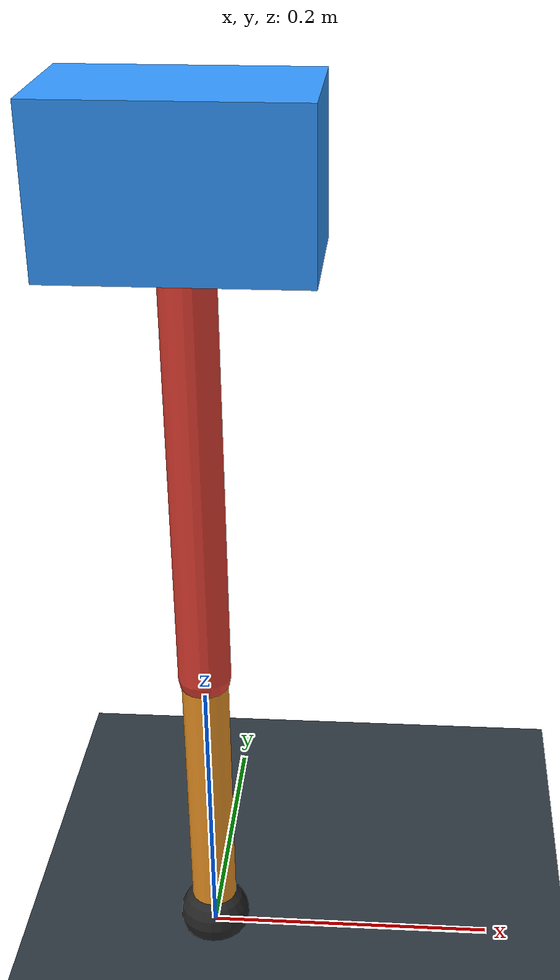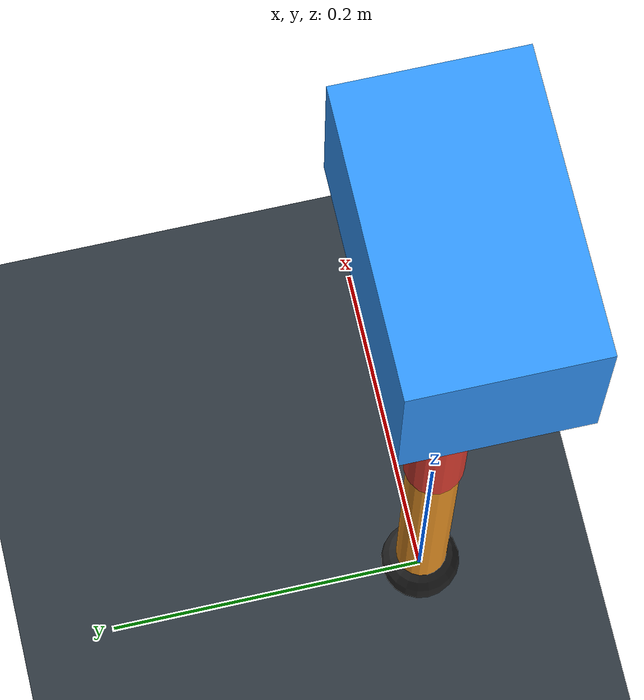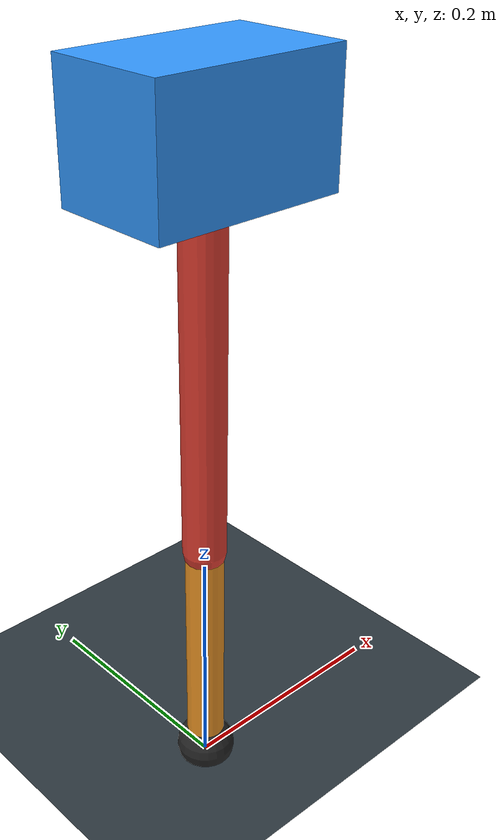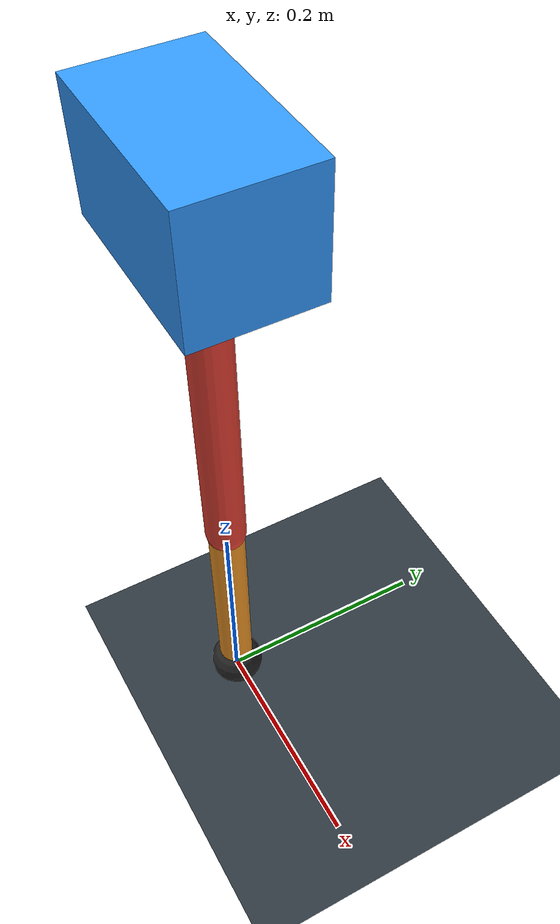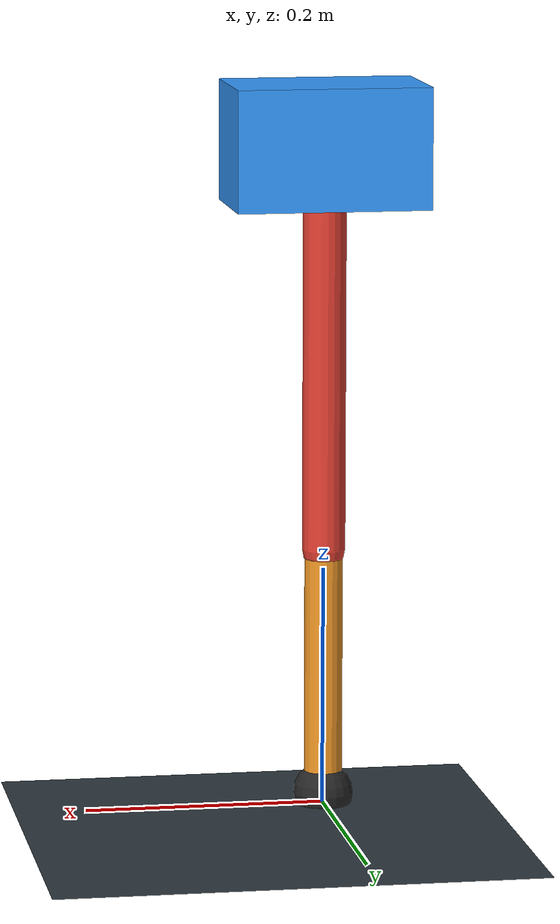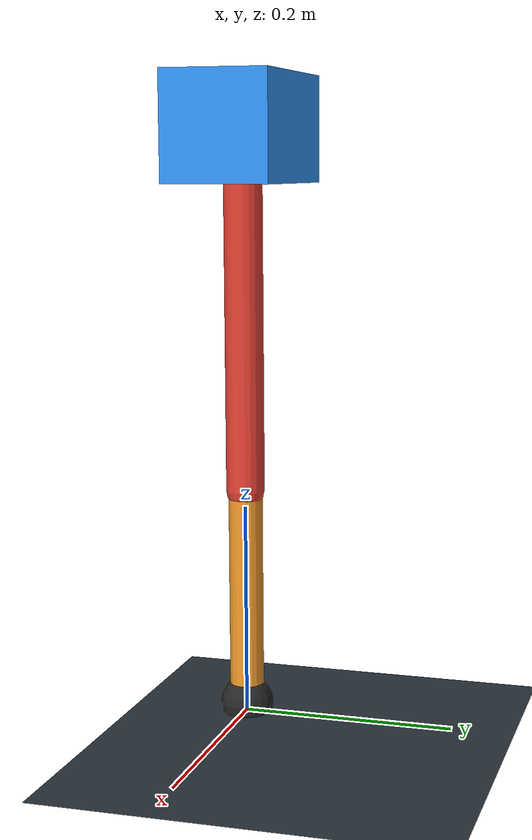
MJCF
<mujoco model="single_axis_two_bar">
  <compiler angle="radian" inertiafromgeom="true"/>
  <option timestep="0.001" integrator="implicitfast" gravity="0 0 -9.81"/>
  <default>
    <joint damping="0.08"/>
    <geom friction="1.2 0.01 0.0001" condim="3"/>
  </default>
  <worldbody>
    <geom name="floor" type="plane" size="5 5 0.1" rgba="0.18 0.22 0.25 1"/>
    <body name="carriage" pos="0 0 0.5541754766286212">
      <joint name="pole_slide" type="slide" axis="0 0 1"/>
      <geom name="payload" type="box" size="0.08 0.05 0.05" mass="3.296033161922973" rgba="0.2 0.6 1 1"/>
      <body name="thigh" pos="0 0 0">
        <joint name="hip" type="hinge" axis="0 1 0"/>
        <geom name="thigh_link" type="capsule" fromto="0 0 0 0 0 -0.337912864077178" size="0.018" mass="0.2407673807795375" rgba="0.9 0.25 0.2 1"/>
        <body name="shank" pos="0 0 -0.337912864077178">
          <joint name="knee" type="hinge" axis="0 1 0"/>
          <geom name="shank_link" type="capsule" fromto="0 0 0 0 0 -0.20762886440593661" size="0.016" mass="0.14793830946261197" rgba="0.95 0.6 0.15 1"/>
          <geom name="foot" type="sphere" pos="0 0 -0.20762886440593661" size="0.025" mass="0.03" rgba="0.15 0.15 0.15 1"/>
          <site name="toe" pos="0 0 -0.20762886440593661" size="0.008"/>
        </body>
      </body>
    </body>
  </worldbody>
  <actuator>
    <motor name="hip_motor" joint="hip" ctrlrange="-33.23346543900239 33.23346543900239"/>
    <motor name="knee_motor" joint="knee" ctrlrange="-130.85195204274038 130.85195204274038"/>
  </actuator>
</mujoco>
